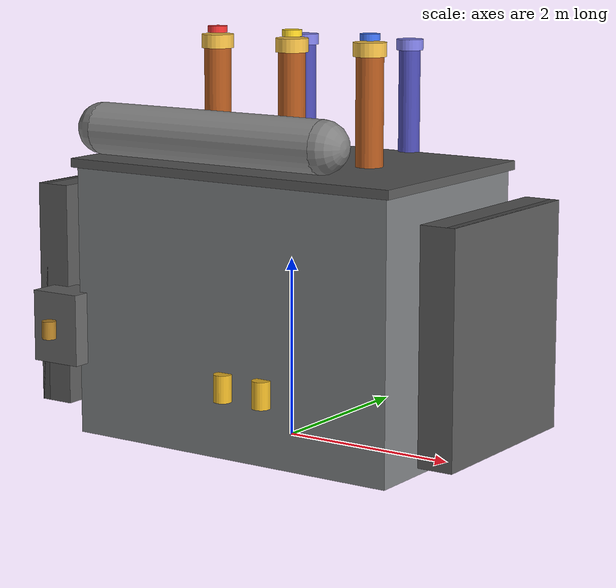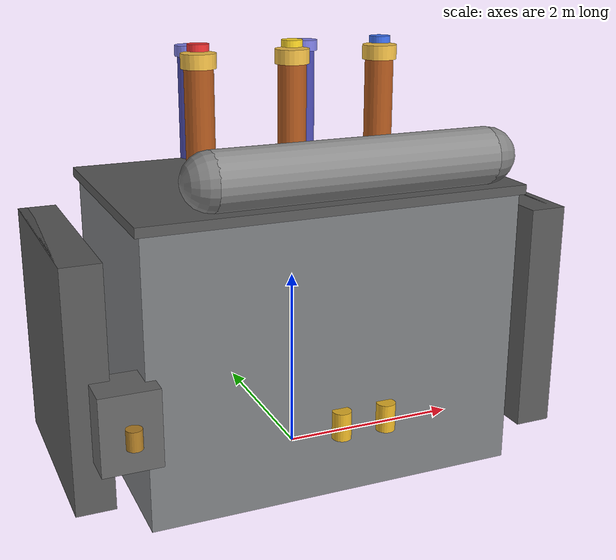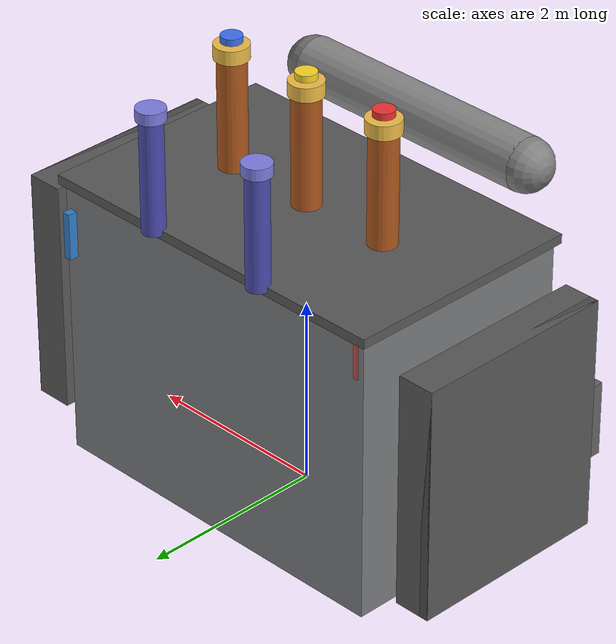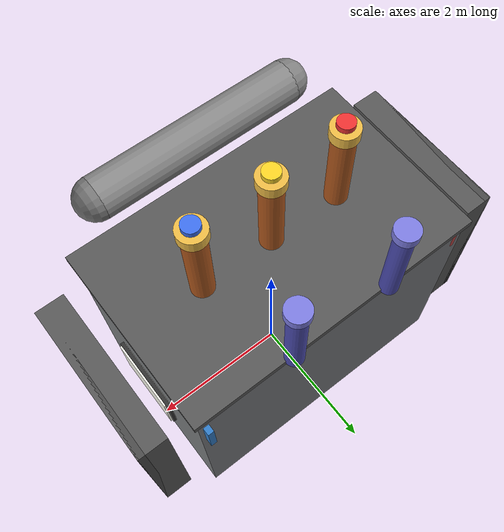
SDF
<?xml version="1.0"?>

<sdf version="1.10">

  <model name="transformer">

    <static>true</static>

    <link name="body">

      <!-- MAIN TANK BODY -->
      <visual name="tank_main">
        <pose>0 0 1.5 0 0 0</pose>
        <geometry>
          <box>
            <size>4 2.5 3</size>
          </box>
        </geometry>
        <material>
          <ambient>0.38 0.39 0.40 1</ambient>
          <diffuse>0.48 0.49 0.50 1</diffuse>
          <specular>0.55 0.55 0.55 1</specular>
        </material>
      </visual>

      <collision name="tank_collision">
        <pose>0 0 1.5 0 0 0</pose>
        <geometry>
          <box>
            <size>4 2.5 3</size>
          </box>
        </geometry>
      </collision>

      <!-- Tank edges for better definition -->
      <visual name="tank_edge_top">
        <pose>0 0 3.05 0 0 0</pose>
        <geometry>
          <box>
            <size>4.1 2.6 0.1</size>
          </box>
        </geometry>
        <material>
          <ambient>0.3 0.3 0.3 1</ambient>
          <diffuse>0.35 0.35 0.35 1</diffuse>
        </material>
      </visual>

      <!-- HV BUSHINGS (PRIMARY) -->
      <!-- HV Bushing 1 -->
      <visual name="hv_bushing_1_body">
        <pose>-1 0 3.65 0 0 0</pose>
        <geometry>
          <cylinder>
            <radius>0.15</radius>
            <length>1.3</length>
          </cylinder>
        </geometry>
        <material>
          <ambient>0.6 0.3 0.1 1</ambient>
          <diffuse>0.7 0.35 0.12 1</diffuse>
        </material>
      </visual>

      <visual name="hv_bushing_1_cap">
        <pose>-1 0 4.35 0 0 0</pose>
        <geometry>
          <cylinder>
            <radius>0.18</radius>
            <length>0.15</length>
          </cylinder>
        </geometry>
        <material>
          <ambient>0.85 0.65 0.22 1</ambient>
          <diffuse>0.95 0.75 0.28 1</diffuse>
        </material>
      </visual>

      <visual name="phase_marker_hv1">
        <pose>-1 0 4.48 0 0 0</pose>
        <geometry>
          <cylinder>
            <radius>0.11</radius>
            <length>0.07</length>
          </cylinder>
        </geometry>
        <material>
          <ambient>0.85 0.12 0.12 1</ambient>
          <diffuse>0.95 0.2 0.2 1</diffuse>
        </material>
      </visual>

      <!-- HV Bushing 2 -->
      <visual name="hv_bushing_2_body">
        <pose>0 0 3.65 0 0 0</pose>
        <geometry>
          <cylinder>
            <radius>0.15</radius>
            <length>1.3</length>
          </cylinder>
        </geometry>
        <material>
          <ambient>0.6 0.3 0.1 1</ambient>
          <diffuse>0.7 0.35 0.12 1</diffuse>
        </material>
      </visual>

      <visual name="hv_bushing_2_cap">
        <pose>0 0 4.35 0 0 0</pose>
        <geometry>
          <cylinder>
            <radius>0.18</radius>
            <length>0.15</length>
          </cylinder>
        </geometry>
        <material>
          <ambient>0.85 0.65 0.22 1</ambient>
          <diffuse>0.95 0.75 0.28 1</diffuse>
        </material>
      </visual>

      <visual name="phase_marker_hv2">
        <pose>0 0 4.48 0 0 0</pose>
        <geometry>
          <cylinder>
            <radius>0.11</radius>
            <length>0.07</length>
          </cylinder>
        </geometry>
        <material>
          <ambient>0.90 0.75 0.10 1</ambient>
          <diffuse>1.0 0.85 0.15 1</diffuse>
        </material>
      </visual>

      <!-- HV Bushing 3 -->
      <visual name="hv_bushing_3_body">
        <pose>1 0 3.65 0 0 0</pose>
        <geometry>
          <cylinder>
            <radius>0.15</radius>
            <length>1.3</length>
          </cylinder>
        </geometry>
        <material>
          <ambient>0.6 0.3 0.1 1</ambient>
          <diffuse>0.7 0.35 0.12 1</diffuse>
        </material>
      </visual>

      <visual name="hv_bushing_3_cap">
        <pose>1 0 4.35 0 0 0</pose>
        <geometry>
          <cylinder>
            <radius>0.18</radius>
            <length>0.15</length>
          </cylinder>
        </geometry>
        <material>
          <ambient>0.85 0.65 0.22 1</ambient>
          <diffuse>0.95 0.75 0.28 1</diffuse>
        </material>
      </visual>

      <visual name="phase_marker_hv3">
        <pose>1 0 4.48 0 0 0</pose>
        <geometry>
          <cylinder>
            <radius>0.11</radius>
            <length>0.07</length>
          </cylinder>
        </geometry>
        <material>
          <ambient>0.15 0.35 0.85 1</ambient>
          <diffuse>0.25 0.45 0.95 1</diffuse>
        </material>
      </visual>

      <!-- LV BUSHINGS (SECONDARY) -->
      <!-- LV Bushing 1 (back left) -->
      <visual name="lv_bushing_1_body">
        <pose>-0.7 1.3 3.65 0 0 0</pose>
        <geometry>
          <cylinder>
            <radius>0.12</radius>
            <length>1.2</length>
          </cylinder>
        </geometry>
        <material>
          <ambient>0.2 0.2 0.6 1</ambient>
          <diffuse>0.3 0.3 0.7 1</diffuse>
        </material>
      </visual>

      <visual name="lv_bushing_1_cap">
        <pose>-0.7 1.3 4.3 0 0 0</pose>
        <geometry>
          <cylinder>
            <radius>0.15</radius>
            <length>0.12</length>
          </cylinder>
        </geometry>
        <material>
          <ambient>0.4 0.4 0.8 1</ambient>
          <diffuse>0.5 0.5 0.9 1</diffuse>
        </material>
      </visual>

      <!-- LV Bushing 2 (back right) -->
      <visual name="lv_bushing_2_body">
        <pose>0.7 1.3 3.65 0 0 0</pose>
        <geometry>
          <cylinder>
            <radius>0.12</radius>
            <length>1.2</length>
          </cylinder>
        </geometry>
        <material>
          <ambient>0.2 0.2 0.6 1</ambient>
          <diffuse>0.3 0.3 0.7 1</diffuse>
        </material>
      </visual>

      <visual name="lv_bushing_2_cap">
        <pose>0.7 1.3 4.3 0 0 0</pose>
        <geometry>
          <cylinder>
            <radius>0.15</radius>
            <length>0.12</length>
          </cylinder>
        </geometry>
        <material>
          <ambient>0.4 0.4 0.8 1</ambient>
          <diffuse>0.5 0.5 0.9 1</diffuse>
        </material>
      </visual>

      <!-- LEFT RADIATOR -->
      <visual name="radiator_left_main">
        <pose>-2.5 0 1.5 0 0 0</pose>
        <geometry>
          <box>
            <size>0.4 2.2 2.5</size>
          </box>
        </geometry>
        <material>
          <ambient>0.25 0.25 0.25 1</ambient>
          <diffuse>0.35 0.35 0.35 1</diffuse>
        </material>
      </visual>

      <!-- Radiator fins (left) -->
      <visual name="radiator_left_fins">
        <pose>-2.65 0 1.5 0 0 0</pose>
        <geometry>
          <box>
            <size>0.1 2.2 2.5</size>
          </box>
        </geometry>
        <material>
          <ambient>0.2 0.2 0.2 1</ambient>
          <diffuse>0.3 0.3 0.3 1</diffuse>
        </material>
      </visual>

      <!-- RIGHT RADIATOR -->
      <visual name="radiator_right_main">
        <pose>2.5 0 1.5 0 0 0</pose>
        <geometry>
          <box>
            <size>0.4 2.2 2.5</size>
          </box>
        </geometry>
        <material>
          <ambient>0.25 0.25 0.25 1</ambient>
          <diffuse>0.35 0.35 0.35 1</diffuse>
        </material>
      </visual>

      <!-- Radiator fins (right) -->
      <visual name="radiator_right_fins">
        <pose>2.65 0 1.5 0 0 0</pose>
        <geometry>
          <box>
            <size>0.1 2.2 2.5</size>
          </box>
        </geometry>
        <material>
          <ambient>0.2 0.2 0.2 1</ambient>
          <diffuse>0.3 0.3 0.3 1</diffuse>
        </material>
      </visual>

      <!-- CONSERVATOR TANK -->
      <visual name="conservator_main">
        <pose>0 -1.5 3.5 0 1.57 0</pose>
        <geometry>
          <cylinder>
            <radius>0.28</radius>
            <length>2.8</length>
          </cylinder>
        </geometry>
        <material>
          <ambient>0.45 0.45 0.45 1</ambient>
          <diffuse>0.55 0.55 0.55 1</diffuse>
        </material>
      </visual>

      <!-- Conservator caps -->
      <visual name="conservator_cap_1">
        <pose>-1.4 -1.5 3.5 0 1.57 0</pose>
        <geometry>
          <sphere>
            <radius>0.28</radius>
          </sphere>
        </geometry>
        <material>
          <ambient>0.4 0.4 0.4 1</ambient>
          <diffuse>0.5 0.5 0.5 1</diffuse>
        </material>
      </visual>

      <visual name="conservator_cap_2">
        <pose>1.4 -1.5 3.5 0 1.57 0</pose>
        <geometry>
          <sphere>
            <radius>0.28</radius>
          </sphere>
        </geometry>
        <material>
          <ambient>0.4 0.4 0.4 1</ambient>
          <diffuse>0.5 0.5 0.5 1</diffuse>
        </material>
      </visual>

      <!-- TAP CHANGER (on side) -->
      <visual name="tap_changer_body">
        <pose>-2.2 -1.2 1.2 0 0 0</pose>
        <geometry>
          <box>
            <size>0.6 0.5 0.8</size>
          </box>
        </geometry>
        <material>
          <ambient>0.3 0.3 0.3 1</ambient>
          <diffuse>0.4 0.4 0.4 1</diffuse>
        </material>
      </visual>

      <visual name="tap_changer_knob">
        <pose>-2.2 -1.55 1.2 0 0 0</pose>
        <geometry>
          <cylinder>
            <radius>0.08</radius>
            <length>0.2</length>
          </cylinder>
        </geometry>
        <material>
          <ambient>0.6 0.4 0.1 1</ambient>
          <diffuse>0.7 0.5 0.15 1</diffuse>
        </material>
      </visual>

      <!-- OIL LEVEL INDICATOR -->
      <visual name="oil_level_indicator">
        <pose>1.9 1.2 2.5 0 0 0</pose>
        <geometry>
          <box>
            <size>0.08 0.3 0.5</size>
          </box>
        </geometry>
        <material>
          <ambient>0.1 0.4 0.7 1</ambient>
          <diffuse>0.2 0.5 0.8 1</diffuse>
        </material>
      </visual>

      <!-- PRESSURE RELIEF VALVE -->
      <visual name="pressure_relief">
        <pose>-1.9 1.2 2.8 0 0 0</pose>
        <geometry>
          <cylinder>
            <radius>0.06</radius>
            <length>0.4</length>
          </cylinder>
        </geometry>
        <material>
          <ambient>0.7 0.2 0.2 1</ambient>
          <diffuse>0.8 0.3 0.3 1</diffuse>
        </material>
      </visual>

      <!-- MOUNTING FEET/BASE -->
      <visual name="foot_1">
        <pose>-1.5 -1 0.1 0 0 0</pose>
        <geometry>
          <box>
            <size>0.3 0.3 0.2</size>
          </box>
        </geometry>
        <material>
          <ambient>0.2 0.2 0.2 1</ambient>
          <diffuse>0.3 0.3 0.3 1</diffuse>
        </material>
      </visual>

      <visual name="foot_2">
        <pose>1.5 -1 0.1 0 0 0</pose>
        <geometry>
          <box>
            <size>0.3 0.3 0.2</size>
          </box>
        </geometry>
        <material>
          <ambient>0.2 0.2 0.2 1</ambient>
          <diffuse>0.3 0.3 0.3 1</diffuse>
        </material>
      </visual>

      <visual name="foot_3">
        <pose>-1.5 1 0.1 0 0 0</pose>
        <geometry>
          <box>
            <size>0.3 0.3 0.2</size>
          </box>
        </geometry>
        <material>
          <ambient>0.2 0.2 0.2 1</ambient>
          <diffuse>0.3 0.3 0.3 1</diffuse>
        </material>
      </visual>

      <visual name="foot_4">
        <pose>1.5 1 0.1 0 0 0</pose>
        <geometry>
          <box>
            <size>0.3 0.3 0.2</size>
          </box>
        </geometry>
        <material>
          <ambient>0.2 0.2 0.2 1</ambient>
          <diffuse>0.3 0.3 0.3 1</diffuse>
        </material>
      </visual>

      <!-- NAMEPLATE -->
      <visual name="nameplate">
        <pose>2.05 0 1.5 0 0 0</pose>
        <geometry>
          <box>
            <size>0.08 1 0.7</size>
          </box>
        </geometry>
        <material>
          <ambient>0.95 0.95 0.9 1</ambient>
          <diffuse>1 1 0.95 1</diffuse>
        </material>
      </visual>

      <!-- Nameplate border -->
      <visual name="nameplate_border">
        <pose>2.04 0 1.5 0 0 0</pose>
        <geometry>
          <box>
            <size>0.05 1.05 0.75</size>
          </box>
        </geometry>
        <material>
          <ambient>0.1 0.1 0.1 1</ambient>
          <diffuse>0.2 0.2 0.2 1</diffuse>
        </material>
      </visual>

      <!-- CABLE TERMINALS (LV) -->
      <visual name="lv_terminal_1">
        <pose>0 -1.3 0.8 0 0 0</pose>
        <geometry>
          <cylinder>
            <radius>0.1</radius>
            <length>0.3</length>
          </cylinder>
        </geometry>
        <material>
          <ambient>0.8 0.6 0.1 1</ambient>
          <diffuse>0.9 0.7 0.15 1</diffuse>
        </material>
      </visual>

      <visual name="lv_terminal_2">
        <pose>0.5 -1.3 0.8 0 0 0</pose>
        <geometry>
          <cylinder>
            <radius>0.1</radius>
            <length>0.3</length>
          </cylinder>
        </geometry>
        <material>
          <ambient>0.8 0.6 0.1 1</ambient>
          <diffuse>0.9 0.7 0.15 1</diffuse>
        </material>
      </visual>

      <!-- DRAIN VALVE -->
      <visual name="drain_valve">
        <pose>-1.9 -1.2 0.3 0 0 0</pose>
        <geometry>
          <cylinder>
            <radius>0.05</radius>
            <length>0.25</length>
          </cylinder>
        </geometry>
        <material>
          <ambient>0.5 0.3 0.1 1</ambient>
          <diffuse>0.6 0.4 0.15 1</diffuse>
        </material>
      </visual>

    </link>

  </model>

</sdf>
